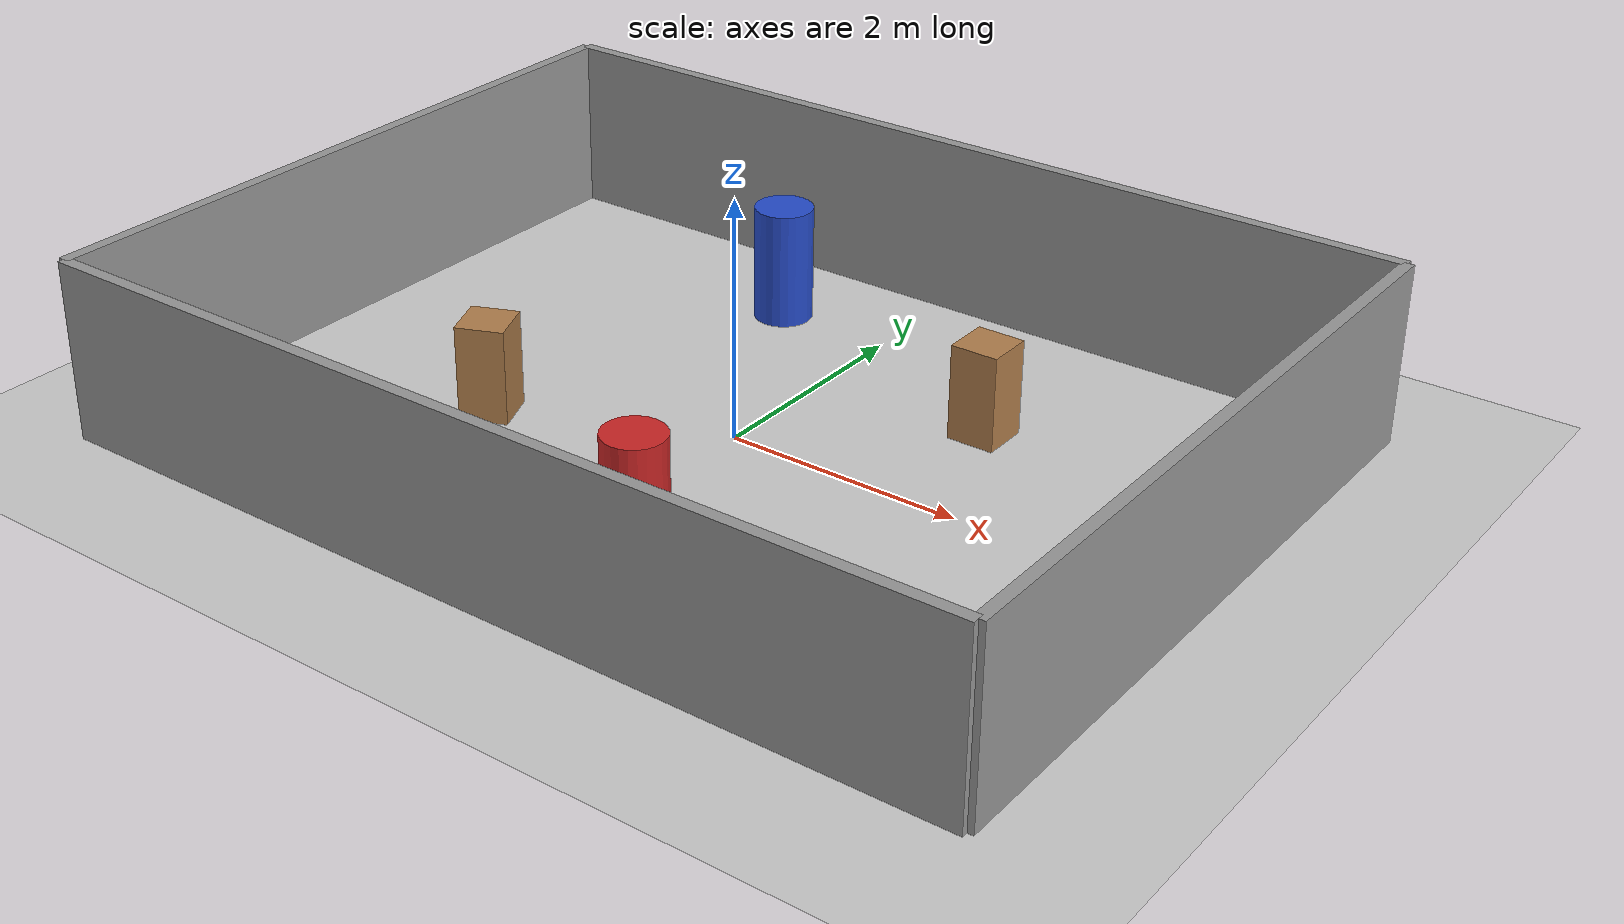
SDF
<?xml version="1.0"?>
<sdf version="1.6">
  <world name="default">

    <include>
      <uri>model://ground_plane</uri>
    </include>

    <include>
      <uri>model://sun</uri>
    </include>

    <physics type="ode">
      <real_time_update_rate>1000.0</real_time_update_rate>
      <max_step_size>0.001</max_step_size>
      <real_time_factor>1</real_time_factor>
    </physics>

    <!-- 8m x 6m 房间，墙高 1.5m，配合约0.57m轴距的小车，
         给 Cartographer 3D 提供墙面/障碍物特征 -->
    <model name="room_walls">
      <static>true</static>

      <link name="wall_north">
        <pose>0 3 0.75 0 0 0</pose>
        <collision name="collision">
          <geometry>
            <box><size>8 0.1 1.5</size></box>
          </geometry>
        </collision>
        <visual name="visual">
          <geometry>
            <box><size>8 0.1 1.5</size></box>
          </geometry>
          <material>
            <script><name>Gazebo/Grey</name></script>
          </material>
        </visual>
      </link>

      <link name="wall_south">
        <pose>0 -3 0.75 0 0 0</pose>
        <collision name="collision">
          <geometry>
            <box><size>8 0.1 1.5</size></box>
          </geometry>
        </collision>
        <visual name="visual">
          <geometry>
            <box><size>8 0.1 1.5</size></box>
          </geometry>
          <material>
            <script><name>Gazebo/Grey</name></script>
          </material>
        </visual>
      </link>

      <link name="wall_east">
        <pose>4 0 0.75 0 0 1.5708</pose>
        <collision name="collision">
          <geometry>
            <box><size>6 0.1 1.5</size></box>
          </geometry>
        </collision>
        <visual name="visual">
          <geometry>
            <box><size>6 0.1 1.5</size></box>
          </geometry>
          <material>
            <script><name>Gazebo/Grey</name></script>
          </material>
        </visual>
      </link>

      <link name="wall_west">
        <pose>-4 0 0.75 0 0 1.5708</pose>
        <collision name="collision">
          <geometry>
            <box><size>6 0.1 1.5</size></box>
          </geometry>
        </collision>
        <visual name="visual">
          <geometry>
            <box><size>6 0.1 1.5</size></box>
          </geometry>
          <material>
            <script><name>Gazebo/Grey</name></script>
          </material>
        </visual>
      </link>
    </model>

    <!-- 房间内的几个障碍物，给建图提供更多特征 -->
    <model name="obstacle_box_1">
      <static>true</static>
      <pose>1.5 1.2 0.4 0 0 0</pose>
      <link name="link">
        <collision name="collision">
          <geometry><box><size>0.4 0.4 0.8</size></box></geometry>
        </collision>
        <visual name="visual">
          <geometry><box><size>0.4 0.4 0.8</size></box></geometry>
          <material><script><name>Gazebo/Wood</name></script></material>
        </visual>
      </link>
    </model>

    <model name="obstacle_box_2">
      <static>true</static>
      <pose>-1.8 -0.8 0.4 0 0 0.4</pose>
      <link name="link">
        <collision name="collision">
          <geometry><box><size>0.4 0.4 0.8</size></box></geometry>
        </collision>
        <visual name="visual">
          <geometry><box><size>0.4 0.4 0.8</size></box></geometry>
          <material><script><name>Gazebo/Wood</name></script></material>
        </visual>
      </link>
    </model>

    <model name="obstacle_cylinder_1">
      <static>true</static>
      <pose>0.5 -1.8 0.5 0 0 0</pose>
      <link name="link">
        <collision name="collision">
          <geometry><cylinder><radius>0.25</radius><length>1.0</length></cylinder></geometry>
        </collision>
        <visual name="visual">
          <geometry><cylinder><radius>0.25</radius><length>1.0</length></cylinder></geometry>
          <material><script><name>Gazebo/Red</name></script></material>
        </visual>
      </link>
    </model>

    <model name="obstacle_cylinder_2">
      <static>true</static>
      <pose>-1.0 2.0 0.5 0 0 0</pose>
      <link name="link">
        <collision name="collision">
          <geometry><cylinder><radius>0.25</radius><length>1.0</length></cylinder></geometry>
        </collision>
        <visual name="visual">
          <geometry><cylinder><radius>0.25</radius><length>1.0</length></cylinder></geometry>
          <material><script><name>Gazebo/Blue</name></script></material>
        </visual>
      </link>
    </model>

  </world>
</sdf>
